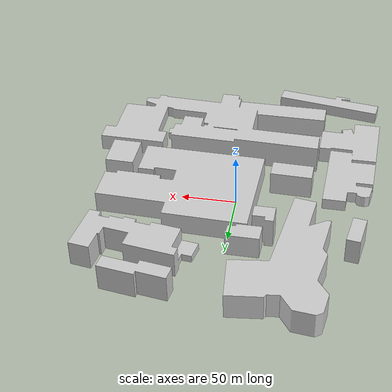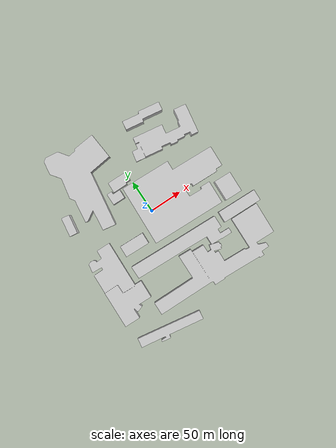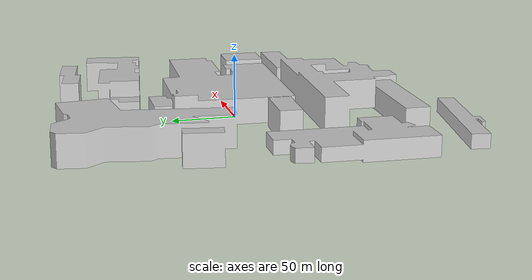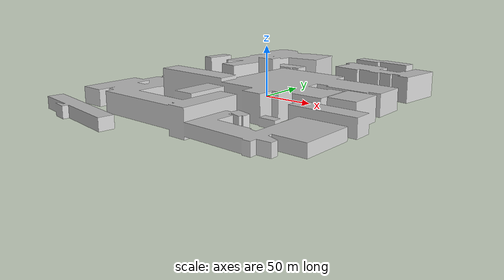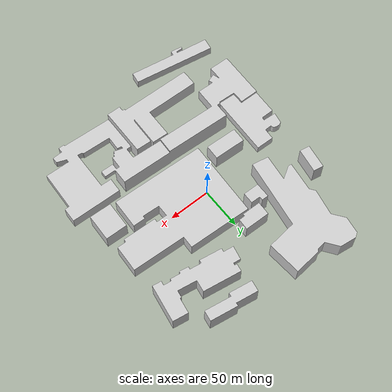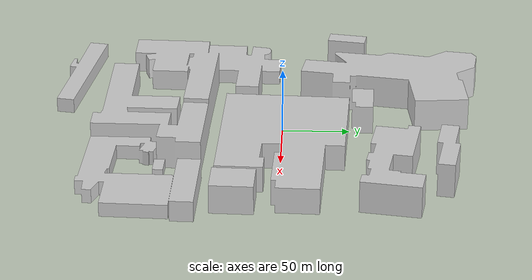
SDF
<?xml version='1.0'?>
<sdf version='1.6'>
  <model name="Campus">
      <static>1</static>
      <link name="campus">
        <collision name="collision">
          <geometry>
            <mesh>
              <uri>model://campus/meshes/engineering_buildings.dae</uri>
            </mesh>
          </geometry>
        </collision>
        <visual name="visual">
          <cast_shadows>1</cast_shadows>
          <geometry>
            <mesh>
              <uri>model://campus/meshes/engineering_buildings.dae</uri>
            </mesh>
          </geometry>
        </visual>
      </link>
  </model>
</sdf>
